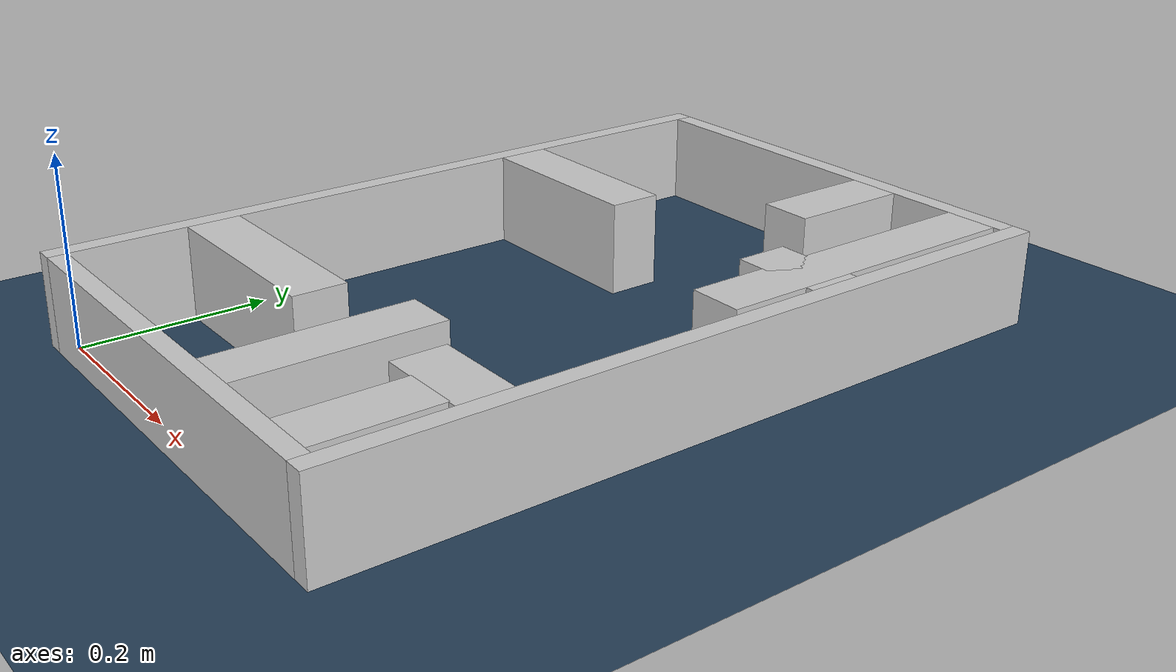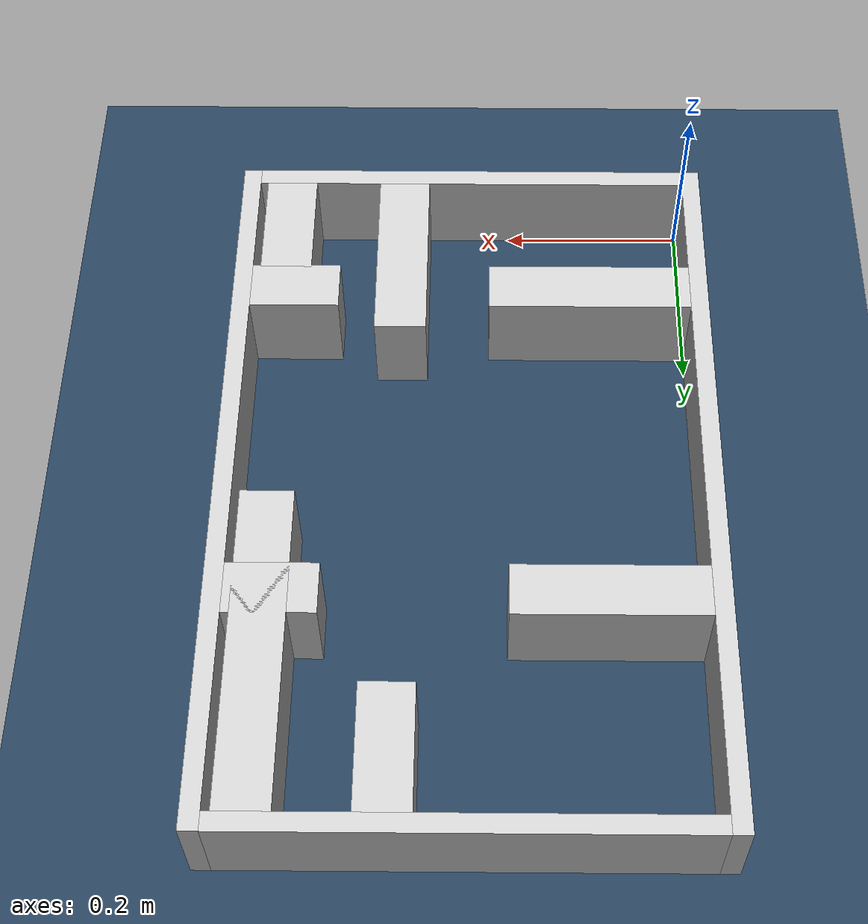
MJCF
<?xml version="1.0" ?>
<mujoco model="generated_real_template">
  <compiler angle="degree"/>
  <option timestep="0.002" integrator="implicitfast" iterations="100" cone="elliptic"/>
  <default>
    <geom density="1"/>
  </default>
  <asset>
    <texture builtin="gradient" height="3072" rgb1="0.3 0.5 0.7" rgb2="0 0 0" type="skybox" width="512"/>
    <texture builtin="checker" height="300" mark="edge" markrgb="0.8 0.8 0.8" name="groundplane" rgb1="0.2 0.3 0.4" rgb2="0.1 0.2 0.3" type="2d" width="300"/>
    <material name="groundplane" reflectance="0.2" texrepeat="5 5" texture="groundplane" texuniform="true"/>
  </asset>
  <worldbody>
    <light dir="0 0 -1" directional="true" pos="0 0 1.5"/>
    <geom name="floor" type="plane" condim="4" friction="0.5 0.005 0.001" material="groundplane" size="0 0 0.05"/>
    <body name="walls">
      <geom name="wall_boundary_left" type="box" condim="4" friction="1.0 0.005 0.0001" rgba="0.8 0.8 0.8 1" pos="-0.010000 0.387500 0.050000" euler="0 0 0.000000" size="0.010000 0.407500 0.050000"/>
      <geom name="wall_boundary_right" type="box" condim="4" friction="1.0 0.005 0.0001" rgba="0.8 0.8 0.8 1" pos="0.500000 0.387500 0.050000" euler="0 0 0.000000" size="0.010000 0.407500 0.050000"/>
      <geom name="wall_boundary_bottom" type="box" condim="4" friction="1.0 0.005 0.0001" rgba="0.8 0.8 0.8 1" pos="0.245000 -0.010000 0.050000" euler="0 0 0.000000" size="0.245000 0.010000 0.050000"/>
      <geom name="wall_boundary_top" type="box" condim="4" friction="1.0 0.005 0.0001" rgba="0.8 0.8 0.8 1" pos="0.245000 0.785000 0.050000" euler="0 0 0.000000" size="0.245000 0.010000 0.050000"/>
      <geom name="wall_inner_1_1" type="box" condim="4" friction="1.0 0.005 0.0001" rgba="0.8 0.8 0.8 1" pos="0.322106 0.104863 0.050000" euler="0 0 90.000000" size="0.104863 0.028500 0.050000"/>
      <geom name="wall_inner_1_2" type="box" condim="4" friction="1.0 0.005 0.0001" rgba="0.8 0.8 0.8 1" pos="0.322106 0.708265 0.050000" euler="0 0 90.000000" size="0.066735 0.028500 0.050000"/>
      <geom name="wall_inner_2_1" type="box" condim="4" friction="1.0 0.005 0.0001" rgba="0.8 0.8 0.8 1" pos="0.452830 0.062597 0.050000" euler="0 0 90.000000" size="0.062597 0.028500 0.050000"/>
      <geom name="wall_inner_2_2" type="box" condim="4" friction="1.0 0.005 0.0001" rgba="0.8 0.8 0.8 1" pos="0.452830 0.599713 0.050000" euler="0 0 90.000000" size="0.175287 0.028500 0.050000"/>
      <geom name="wall_inner_3_1" type="box" condim="4" friction="1.0 0.005 0.0001" rgba="0.8 0.8 0.8 1" pos="0.101818 0.538639 0.050000" euler="0 0 0.000000" size="0.101818 0.028500 0.050000"/>
      <geom name="wall_inner_3_2" type="box" condim="4" friction="1.0 0.005 0.0001" rgba="0.8 0.8 0.8 1" pos="0.441829 0.538639 0.050000" euler="0 0 0.000000" size="0.048171 0.028500 0.050000"/>
      <geom name="wall_inner_4_1" type="box" condim="4" friction="1.0 0.005 0.0001" rgba="0.8 0.8 0.8 1" pos="0.111954 0.152022 0.050000" euler="0 0 0.000000" size="0.111954 0.028500 0.050000"/>
      <geom name="wall_inner_4_2" type="box" condim="4" friction="1.0 0.005 0.0001" rgba="0.8 0.8 0.8 1" pos="0.440720 0.152022 0.050000" euler="0 0 0.000000" size="0.049280 0.028500 0.050000"/>
    </body>
  </worldbody>
</mujoco>
